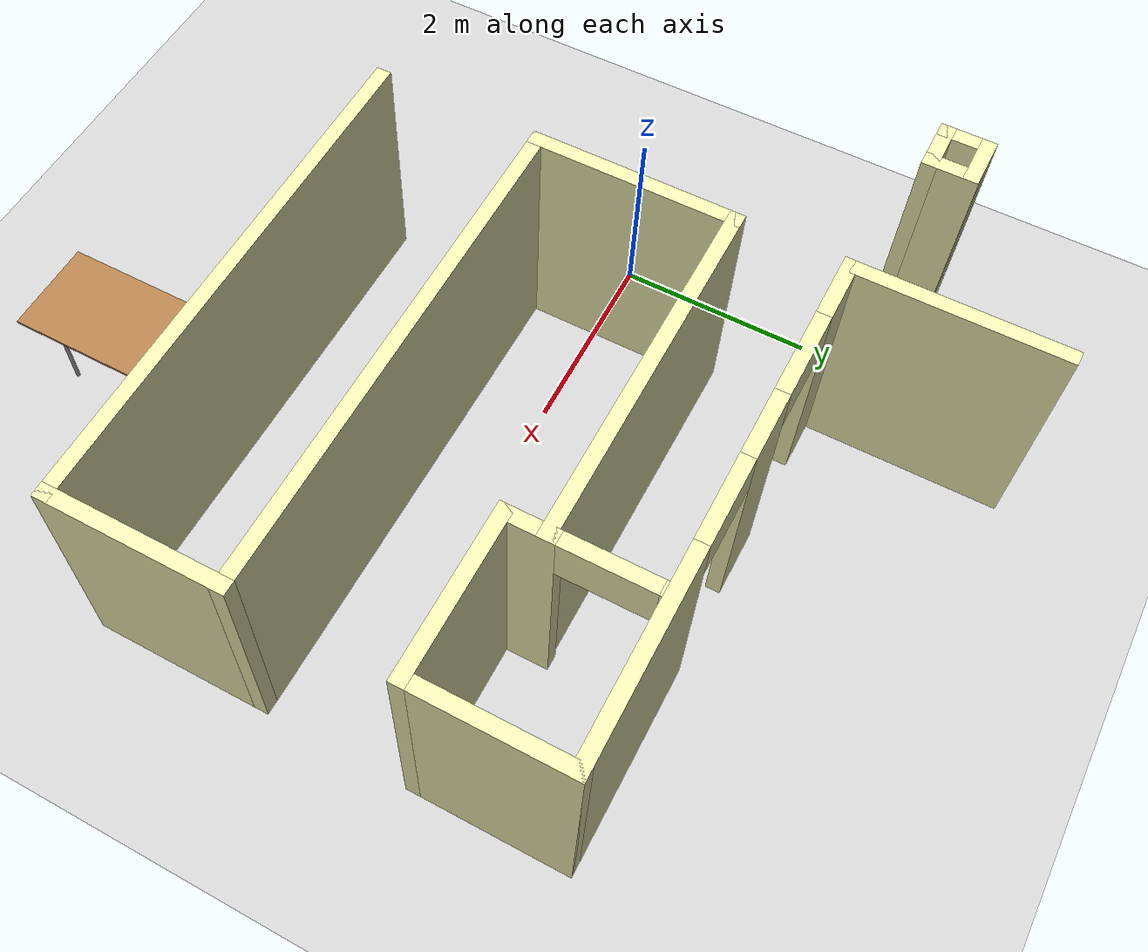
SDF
<sdf version="1.6">
 <world name="default">
  <model name="ground_plane">
   <static>1</static>
   <link name="link">
    <collision name="collision">
     <geometry><plane><normal>0 0 1</normal><size>100 100</size></plane></geometry>
     <surface><friction><ode><mu>100</mu><mu2>50</mu2></ode></friction></surface>
    </collision>
    <visual name="visual">
     <cast_shadows>0</cast_shadows>
     <geometry><plane><normal>0 0 1</normal><size>100 100</size></plane></geometry>
     <material>
      <script><uri>file://media/materials/scripts/gazebo.material</uri><name>Gazebo/Grey</name></script>
     </material>
    </visual>
   </link>
  </model>
  <model name="Building">
   <link name="Wall_113">
    <collision name="Wall_113_Collision">
     <geometry><box><size>1.75 0.15 2.5</size></box></geometry>
     <pose>0 0 1.25 0 -0 0</pose>
    </collision>
    <visual name="Wall_113_Visual">
     <pose>0 0 1.25 0 -0 0</pose>
     <geometry><box><size>1.75 0.15 2.5</size></box></geometry>
     <material>
      <script><uri>file://media/materials/scripts/gazebo.material</uri><name>Gazebo/Grey</name></script>
      <ambient>0.92 0.92 0.68 1</ambient>
     </material>
     <meta><layer>0</layer></meta>
    </visual>
    <pose>5.2 0.836388 0 0 -0 3.14159</pose>
   </link>
   <link name="Wall_115">
    <pose>4.4 1.51139 0 0 -0 1.5708</pose>
    <visual name="Wall_115_Visual_0">
     <pose>-0.461821 0 1.25 0 -0 0</pose>
     <geometry><box><size>0.576358 0.15 2.5</size></box></geometry>
     <material>
      <script><uri>file://media/materials/scripts/gazebo.material</uri><name>Gazebo/Grey</name></script>
      <ambient>0.92 0.92 0.68 1</ambient>
     </material>
     <meta><layer>0</layer></meta>
    </visual>
    <collision name="Wall_115_Collision_0">
     <geometry><box><size>0.576358 0.15 2.5</size></box></geometry>
     <pose>-0.461821 0 1.25 0 -0 0</pose>
    </collision>
    <visual name="Wall_115_Visual_1">
     <pose>0.738179 0 1.25 0 -0 0</pose>
     <geometry><box><size>0.023642 0.15 2.5</size></box></geometry>
     <material>
      <script><uri>file://media/materials/scripts/gazebo.material</uri><name>Gazebo/Grey</name></script>
      <ambient>0.92 0.92 0.68 1</ambient>
     </material>
     <meta><layer>0</layer></meta>
    </visual>
    <collision name="Wall_115_Collision_1">
     <geometry><box><size>0.023642 0.15 2.5</size></box></geometry>
     <pose>0.738179 0 1.25 0 -0 0</pose>
    </collision>
    <visual name="Wall_115_Visual_2">
     <pose>0.276358 0 2.25 0 -0 0</pose>
     <geometry><box><size>0.9 0.15 0.5</size></box></geometry>
     <material>
      <script><uri>file://media/materials/scripts/gazebo.material</uri><name>Gazebo/Grey</name></script>
      <ambient>0.92 0.92 0.68 1</ambient>
     </material>
     <meta><layer>0</layer></meta>
    </visual>
    <collision name="Wall_115_Collision_2">
     <geometry><box><size>0.9 0.15 0.5</size></box></geometry>
     <pose>0.276358 0 2.25 0 -0 0</pose>
    </collision>
   </link>
   <link name="Wall_117">
    <collision name="Wall_117_Collision">
     <geometry><box><size>3.75 0.15 2.5</size></box></geometry>
     <pose>0 0 1.25 0 -0 0</pose>
    </collision>
    <visual name="Wall_117_Visual">
     <pose>0 0 1.25 0 -0 0</pose>
     <geometry><box><size>3.75 0.15 2.5</size></box></geometry>
     <material>
      <script><uri>file://media/materials/scripts/gazebo.material</uri><name>Gazebo/Grey</name></script>
      <ambient>0.92 0.92 0.68 1</ambient>
     </material>
     <meta><layer>0</layer></meta>
    </visual>
    <pose>2.6 1.23639 0 0 -0 0</pose>
   </link>
   <link name="Wall_14">
    <collision name="Wall_14_Collision">
     <geometry><box><size>1.85 0.15 2.5</size></box></geometry>
     <pose>0 0 1.25 0 -0 0</pose>
    </collision>
    <visual name="Wall_14_Visual">
     <pose>0 0 1.25 0 -0 0</pose>
     <geometry><box><size>1.85 0.15 2.5</size></box></geometry>
     <material>
      <script><uri>file://media/materials/scripts/gazebo.material</uri><name>Gazebo/Grey</name></script>
      <ambient>0.92 0.92 0.68 1</ambient>
     </material>
     <meta><layer>0</layer></meta>
    </visual>
    <pose>6 -1.61361 0 0 -0 1.5708</pose>
   </link>
   <link name="Wall_16">
    <collision name="Wall_16_Collision">
     <geometry><box><size>5.35 0.15 2.5</size></box></geometry>
     <pose>0 0 1.25 0 -0 0</pose>
    </collision>
    <visual name="Wall_16_Visual">
     <pose>0 0 1.25 0 -0 0</pose>
     <geometry><box><size>5.35 0.15 2.5</size></box></geometry>
     <material>
      <script><uri>file://media/materials/scripts/gazebo.material</uri><name>Gazebo/Grey</name></script>
      <ambient>0.92 0.92 0.68 1</ambient>
     </material>
     <meta><layer>0</layer></meta>
    </visual>
    <pose>3.4 -0.763612 0 0 -0 3.14159</pose>
   </link>
   <link name="Wall_18">
    <collision name="Wall_18_Collision">
     <geometry><box><size>2.15 0.15 2.5</size></box></geometry>
     <pose>0 0 1.25 0 -0 0</pose>
    </collision>
    <visual name="Wall_18_Visual">
     <pose>0 0 1.25 0 -0 0</pose>
     <geometry><box><size>2.15 0.15 2.5</size></box></geometry>
     <material>
      <script><uri>file://media/materials/scripts/gazebo.material</uri><name>Gazebo/Grey</name></script>
      <ambient>0.92 0.92 0.68 1</ambient>
     </material>
     <meta><layer>0</layer></meta>
    </visual>
    <pose>0.8 0.236388 0 0 -0 1.5708</pose>
   </link>
   <link name="Wall_22">
    <collision name="Wall_22_Collision">
     <geometry><box><size>2.15 0.15 2.5</size></box></geometry>
     <pose>0 0 1.25 0 -0 0</pose>
    </collision>
    <visual name="Wall_22_Visual">
     <pose>0 0 1.25 0 -0 0</pose>
     <geometry><box><size>2.15 0.15 2.5</size></box></geometry>
     <material>
      <script><uri>file://media/materials/scripts/gazebo.material</uri><name>Gazebo/Grey</name></script>
      <ambient>0.92 0.92 0.68 1</ambient>
     </material>
     <meta><layer>0</layer></meta>
    </visual>
    <pose>0.8 3.33639 0 0 0 -1.5708</pose>
   </link>
   <link name="Wall_24">
    <pose>3.4 2.33639 0 0 -0 0</pose>
    <visual name="Wall_24_Visual_0">
     <pose>-2.33821 0 1.25 0 -0 0</pose>
     <geometry><box><size>0.673574 0.15 2.5</size></box></geometry>
     <material>
      <script><uri>file://media/materials/scripts/gazebo.material</uri><name>Gazebo/Grey</name></script>
      <ambient>0.92 0.92 0.68 1</ambient>
     </material>
     <meta><layer>0</layer></meta>
    </visual>
    <collision name="Wall_24_Collision_0">
     <geometry><box><size>0.673574 0.15 2.5</size></box></geometry>
     <pose>-2.33821 0 1.25 0 -0 0</pose>
    </collision>
    <visual name="Wall_24_Visual_1">
     <pose>-0.749839 0 1.25 0 -0 0</pose>
     <geometry><box><size>0.703173 0.15 2.5</size></box></geometry>
     <material>
      <script><uri>file://media/materials/scripts/gazebo.material</uri><name>Gazebo/Grey</name></script>
      <ambient>0.92 0.92 0.68 1</ambient>
     </material>
     <meta><layer>0</layer></meta>
    </visual>
    <collision name="Wall_24_Collision_1">
     <geometry><box><size>0.703173 0.15 2.5</size></box></geometry>
     <pose>-0.749839 0 1.25 0 -0 0</pose>
    </collision>
    <visual name="Wall_24_Visual_2">
     <pose>1.58837 0 1.25 0 -0 0</pose>
     <geometry><box><size>2.17325 0.15 2.5</size></box></geometry>
     <material>
      <script><uri>file://media/materials/scripts/gazebo.material</uri><name>Gazebo/Grey</name></script>
      <ambient>0.92 0.92 0.68 1</ambient>
     </material>
     <meta><layer>0</layer></meta>
    </visual>
    <collision name="Wall_24_Collision_2">
     <geometry><box><size>2.17325 0.15 2.5</size></box></geometry>
     <pose>1.58837 0 1.25 0 -0 0</pose>
    </collision>
    <visual name="Wall_24_Visual_3">
     <pose>-1.55143 0 2.25 0 -0 0</pose>
     <geometry><box><size>0.9 0.15 0.5</size></box></geometry>
     <material>
      <script><uri>file://media/materials/scripts/gazebo.material</uri><name>Gazebo/Grey</name></script>
      <ambient>0.92 0.92 0.68 1</ambient>
     </material>
     <meta><layer>0</layer></meta>
    </visual>
    <collision name="Wall_24_Collision_3">
     <geometry><box><size>0.9 0.15 0.5</size></box></geometry>
     <pose>-1.55143 0 2.25 0 -0 0</pose>
    </collision>
    <visual name="Wall_24_Visual_4">
     <pose>0.051747 0 2.25 0 -0 0</pose>
     <geometry><box><size>0.9 0.15 0.5</size></box></geometry>
     <material>
      <script><uri>file://media/materials/scripts/gazebo.material</uri><name>Gazebo/Grey</name></script>
      <ambient>0.92 0.92 0.68 1</ambient>
     </material>
     <meta><layer>0</layer></meta>
    </visual>
    <collision name="Wall_24_Collision_4">
     <geometry><box><size>0.9 0.15 0.5</size></box></geometry>
     <pose>0.051747 0 2.25 0 -0 0</pose>
    </collision>
   </link>
   <link name="Wall_26">
    <collision name="Wall_26_Collision">
     <geometry><box><size>1.65 0.15 2.5</size></box></geometry>
     <pose>0 0 1.25 0 -0 0</pose>
    </collision>
    <visual name="Wall_26_Visual">
     <pose>0 0 1.25 0 -0 0</pose>
     <geometry><box><size>1.65 0.15 2.5</size></box></geometry>
     <material>
      <script><uri>file://media/materials/scripts/gazebo.material</uri><name>Gazebo/Grey</name></script>
      <ambient>0.92 0.92 0.68 1</ambient>
     </material>
     <meta><layer>0</layer></meta>
    </visual>
    <pose>6 1.58639 0 0 0 -1.5708</pose>
   </link>
   <link name="Wall_71">
    <collision name="Wall_71_Collision">
     <geometry><box><size>0.55 0.15 2.5</size></box></geometry>
     <pose>0 0 1.25 0 -0 0</pose>
    </collision>
    <visual name="Wall_71_Visual">
     <pose>0 0 1.25 0 -0 0</pose>
     <geometry><box><size>0.55 0.15 2.5</size></box></geometry>
     <material>
      <script><uri>file://media/materials/scripts/gazebo.material</uri><name>Gazebo/Grey</name></script>
      <ambient>0.92 0.92 0.68 1</ambient>
     </material>
     <meta><layer>0</layer></meta>
    </visual>
    <pose>-0.9 2.53639 0 0 -0 0</pose>
   </link>
   <link name="Wall_73">
    <collision name="Wall_73_Collision">
     <geometry><box><size>0.55 0.15 2.5</size></box></geometry>
     <pose>0 0 1.25 0 -0 0</pose>
    </collision>
    <visual name="Wall_73_Visual">
     <pose>0 0 1.25 0 -0 0</pose>
     <geometry><box><size>0.55 0.15 2.5</size></box></geometry>
     <material>
      <script><uri>file://media/materials/scripts/gazebo.material</uri><name>Gazebo/Grey</name></script>
      <ambient>0.92 0.92 0.68 1</ambient>
     </material>
     <meta><layer>0</layer></meta>
    </visual>
    <pose>-0.9 2.93639 0 0 -0 0</pose>
   </link>
   <link name="Wall_75">
    <collision name="Wall_75_Collision">
     <geometry><box><size>0.55 0.15 2.5</size></box></geometry>
     <pose>0 0 1.25 0 -0 0</pose>
    </collision>
    <visual name="Wall_75_Visual">
     <pose>0 0 1.25 0 -0 0</pose>
     <geometry><box><size>0.55 0.15 2.5</size></box></geometry>
     <material>
      <script><uri>file://media/materials/scripts/gazebo.material</uri><name>Gazebo/Grey</name></script>
      <ambient>0.92 0.92 0.68 1</ambient>
     </material>
     <meta><layer>0</layer></meta>
    </visual>
    <pose>-1.1 2.73639 0 0 0 -1.5708</pose>
   </link>
   <link name="Wall_78">
    <collision name="Wall_78_Collision">
     <geometry><box><size>0.55 0.15 2.5</size></box></geometry>
     <pose>0 0 1.25 0 -0 0</pose>
    </collision>
    <visual name="Wall_78_Visual">
     <pose>0 0 1.25 0 -0 0</pose>
     <geometry><box><size>0.55 0.15 2.5</size></box></geometry>
     <material>
      <script><uri>file://media/materials/scripts/gazebo.material</uri><name>Gazebo/Grey</name></script>
      <ambient>0.92 0.92 0.68 1</ambient>
     </material>
     <meta><layer>0</layer></meta>
    </visual>
    <pose>-0.7 2.73639 0 0 0 -1.5708</pose>
   </link>
   <link name="Wall_8">
    <collision name="Wall_8_Collision">
     <geometry><box><size>5.35 0.15 2.5</size></box></geometry>
     <pose>0 0 1.25 0 -0 0</pose>
    </collision>
    <visual name="Wall_8_Visual">
     <pose>0 0 1.25 0 -0 0</pose>
     <geometry><box><size>5.35 0.15 2.5</size></box></geometry>
     <material>
      <script><uri>file://media/materials/scripts/gazebo.material</uri><name>Gazebo/Grey</name></script>
      <ambient>0.92 0.92 0.68 1</ambient>
     </material>
     <meta><layer>0</layer></meta>
    </visual>
    <pose>3.4 -2.46361 0 0 -0 0</pose>
   </link>
   <static>1</static>
  </model>
  <model name="tablealt_big_clone_0">
   <link name="link">
    <inertial>
     <mass>1</mass>
     <inertia><ixx>1</ixx><ixy>0</ixy><ixz>0</ixz><iyy>1</iyy><iyz>0</iyz><izz>1</izz></inertia>
    </inertial>
    <visual name="back_right_leg">
     <pose>-0.68 -0.38 0.4 0 -0 0</pose>
     <geometry><cylinder><radius>0.02</radius><length>0.8</length></cylinder></geometry>
     <material>
      <script><uri>file://media/materials/scripts/gazebo.material</uri><name>Gazebo/Grey</name></script>
      <shader type="pixel"><normal_map>__default__</normal_map></shader>
      <ambient>0.3 0.3 0.3 1</ambient>
      <diffuse>0.7 0.7 0.7 1</diffuse>
      <specular>0.01 0.01 0.01 1</specular>
      <emissive>0 0 0 1</emissive>
     </material>
    </visual>
    <visual name="back_left_leg">
     <pose>-0.68 0.38 0.4 0 -0 0</pose>
     <geometry><cylinder><radius>0.02</radius><length>0.8</length></cylinder></geometry>
     <material>
      <script><uri>file://media/materials/scripts/gazebo.material</uri><name>Gazebo/Grey</name></script>
      <shader type="pixel"><normal_map>__default__</normal_map></shader>
      <ambient>0.3 0.3 0.3 1</ambient>
      <diffuse>0.7 0.7 0.7 1</diffuse>
      <specular>0.01 0.01 0.01 1</specular>
      <emissive>0 0 0 1</emissive>
     </material>
    </visual>
    <visual name="visual1">
     <pose>0 0 0.8 0 -0 0</pose>
     <geometry><box><size>2.2 1 0.03</size></box></geometry>
     <material>
      <script><uri>file://media/materials/scripts/gazebo.material</uri><name>Gazebo/Wood</name></script>
      <shader type="pixel"><normal_map>__default__</normal_map></shader>
      <ambient>0.92 0.92 0.68 1</ambient>
      <diffuse>1 1 1 1</diffuse>
      <specular>0.2 0.2 0.2 1</specular>
      <emissive>0 0 0 1</emissive>
     </material>
    </visual>
    <visual name="front_left_leg">
     <pose>0.68 0.38 0.4 0 -0 0</pose>
     <geometry><cylinder><radius>0.02</radius><length>0.8</length></cylinder></geometry>
     <material>
      <script><uri>file://media/materials/scripts/gazebo.material</uri><name>Gazebo/Grey</name></script>
      <shader type="pixel"><normal_map>__default__</normal_map></shader>
      <ambient>0.3 0.3 0.3 1</ambient>
      <diffuse>0.7 0.7 0.7 1</diffuse>
      <specular>0.01 0.01 0.01 1</specular>
      <emissive>0 0 0 1</emissive>
     </material>
    </visual>
    <visual name="front_right_leg">
     <pose>0.68 -0.38 0.4 0 -0 0</pose>
     <geometry><cylinder><radius>0.02</radius><length>0.8</length></cylinder></geometry>
     <material>
      <script><uri>file://media/materials/scripts/gazebo.material</uri><name>Gazebo/Grey</name></script>
      <shader type="pixel"><normal_map>__default__</normal_map></shader>
      <ambient>0.3 0.3 0.3 1</ambient>
      <diffuse>0.7 0.7 0.7 1</diffuse>
      <specular>0.01 0.01 0.01 1</specular>
      <emissive>0 0 0 1</emissive>
     </material>
    </visual>
    <collision name="front_right_leg">
     <pose>0.68 -0.38 0.4 0 -0 0</pose>
     <geometry><cylinder><radius>0.02</radius><length>0.8</length></cylinder></geometry>
     <surface>
      <friction>
       <ode><mu>1</mu><mu2>1</mu2><fdir1>0 0 0</fdir1><slip1>0</slip1><slip2>0</slip2></ode>
       <torsional>
        <coefficient>1</coefficient>
        <patch_radius>0</patch_radius>
        <surface_radius>0</surface_radius>
        <use_patch_radius>1</use_patch_radius>
        <ode><slip>0</slip></ode>
       </torsional>
      </friction>
      <bounce><restitution_coefficient>0</restitution_coefficient><threshold>1e+06</threshold></bounce>
      <contact>
       <collide_without_contact>0</collide_without_contact>
       <collide_without_contact_bitmask>1</collide_without_contact_bitmask>
       <collide_bitmask>1</collide_bitmask>
       <ode>
        <soft_cfm>0</soft_cfm>
        <soft_erp>0.2</soft_erp>
        <kp>1e+13</kp>
        <kd>1</kd>
        <max_vel>0.01</max_vel>
        <min_depth>0</min_depth>
       </ode>
       <bullet>
        <split_impulse>1</split_impulse>
        <split_impulse_penetration_threshold>-0.01</split_impulse_penetration_threshold>
        <soft_cfm>0</soft_cfm>
        <soft_erp>0.2</soft_erp>
        <kp>1e+13</kp>
        <kd>1</kd>
       </bullet>
      </contact>
     </surface>
    </collision>
    <collision name="surface">
     <pose>0 0 0.8 0 -0 0</pose>
     <geometry><box><size>2.2 1 0.03</size></box></geometry>
     <surface>
      <friction>
       <ode><mu>0.6</mu><mu2>0.6</mu2><fdir1>0 0 0</fdir1><slip1>0</slip1><slip2>0</slip2></ode>
       <torsional>
        <coefficient>1</coefficient>
        <patch_radius>0</patch_radius>
        <surface_radius>0</surface_radius>
        <use_patch_radius>1</use_patch_radius>
        <ode><slip>0</slip></ode>
       </torsional>
      </friction>
      <bounce><restitution_coefficient>0</restitution_coefficient><threshold>1e+06</threshold></bounce>
      <contact>
       <collide_without_contact>0</collide_without_contact>
       <collide_without_contact_bitmask>1</collide_without_contact_bitmask>
       <collide_bitmask>1</collide_bitmask>
       <ode>
        <soft_cfm>0</soft_cfm>
        <soft_erp>0.2</soft_erp>
        <kp>1e+13</kp>
        <kd>1</kd>
        <max_vel>0.01</max_vel>
        <min_depth>0</min_depth>
       </ode>
       <bullet>
        <split_impulse>1</split_impulse>
        <split_impulse_penetration_threshold>-0.01</split_impulse_penetration_threshold>
        <soft_cfm>0</soft_cfm>
        <soft_erp>0.2</soft_erp>
        <kp>1e+13</kp>
        <kd>1</kd>
       </bullet>
      </contact>
     </surface>
    </collision>
    <collision name="front_left_leg">
     <pose>0.68 0.38 0.4 0 -0 0</pose>
     <geometry><cylinder><radius>0.02</radius><length>0.8</length></cylinder></geometry>
     <surface>
      <friction>
       <ode><mu>1</mu><mu2>1</mu2><fdir1>0 0 0</fdir1><slip1>0</slip1><slip2>0</slip2></ode>
       <torsional>
        <coefficient>1</coefficient>
        <patch_radius>0</patch_radius>
        <surface_radius>0</surface_radius>
        <use_patch_radius>1</use_patch_radius>
        <ode><slip>0</slip></ode>
       </torsional>
      </friction>
      <bounce><restitution_coefficient>0</restitution_coefficient><threshold>1e+06</threshold></bounce>
      <contact>
       <collide_without_contact>0</collide_without_contact>
       <collide_without_contact_bitmask>1</collide_without_contact_bitmask>
       <collide_bitmask>1</collide_bitmask>
       <ode>
        <soft_cfm>0</soft_cfm>
        <soft_erp>0.2</soft_erp>
        <kp>1e+13</kp>
        <kd>1</kd>
        <max_vel>0.01</max_vel>
        <min_depth>0</min_depth>
       </ode>
       <bullet>
        <split_impulse>1</split_impulse>
        <split_impulse_penetration_threshold>-0.01</split_impulse_penetration_threshold>
        <soft_cfm>0</soft_cfm>
        <soft_erp>0.2</soft_erp>
        <kp>1e+13</kp>
        <kd>1</kd>
       </bullet>
      </contact>
     </surface>
    </collision>
    <collision name="back_left_leg">
     <pose>-0.68 0.38 0.4 0 -0 0</pose>
     <geometry><cylinder><radius>0.02</radius><length>0.8</length></cylinder></geometry>
     <surface>
      <friction>
       <ode><mu>1</mu><mu2>1</mu2><fdir1>0 0 0</fdir1><slip1>0</slip1><slip2>0</slip2></ode>
       <torsional>
        <coefficient>1</coefficient>
        <patch_radius>0</patch_radius>
        <surface_radius>0</surface_radius>
        <use_patch_radius>1</use_patch_radius>
        <ode><slip>0</slip></ode>
       </torsional>
      </friction>
      <bounce><restitution_coefficient>0</restitution_coefficient><threshold>1e+06</threshold></bounce>
      <contact>
       <collide_without_contact>0</collide_without_contact>
       <collide_without_contact_bitmask>1</collide_without_contact_bitmask>
       <collide_bitmask>1</collide_bitmask>
       <ode>
        <soft_cfm>0</soft_cfm>
        <soft_erp>0.2</soft_erp>
        <kp>1e+13</kp>
        <kd>1</kd>
        <max_vel>0.01</max_vel>
        <min_depth>0</min_depth>
       </ode>
       <bullet>
        <split_impulse>1</split_impulse>
        <split_impulse_penetration_threshold>-0.01</split_impulse_penetration_threshold>
        <soft_cfm>0</soft_cfm>
        <soft_erp>0.2</soft_erp>
        <kp>1e+13</kp>
        <kd>1</kd>
       </bullet>
      </contact>
     </surface>
    </collision>
    <collision name="back_right_leg">
     <pose>-0.68 -0.38 0.4 0 -0 0</pose>
     <geometry><cylinder><radius>0.02</radius><length>0.8</length></cylinder></geometry>
     <surface>
      <friction>
       <ode><mu>1</mu><mu2>1</mu2><fdir1>0 0 0</fdir1><slip1>0</slip1><slip2>0</slip2></ode>
       <torsional>
        <coefficient>1</coefficient>
        <patch_radius>0</patch_radius>
        <surface_radius>0</surface_radius>
        <use_patch_radius>1</use_patch_radius>
        <ode><slip>0</slip></ode>
       </torsional>
      </friction>
      <bounce><restitution_coefficient>0</restitution_coefficient><threshold>1e+06</threshold></bounce>
      <contact>
       <collide_without_contact>0</collide_without_contact>
       <collide_without_contact_bitmask>1</collide_without_contact_bitmask>
       <collide_bitmask>1</collide_bitmask>
       <ode>
        <soft_cfm>0</soft_cfm>
        <soft_erp>0.2</soft_erp>
        <kp>1e+13</kp>
        <kd>1</kd>
        <max_vel>0.01</max_vel>
        <min_depth>0</min_depth>
       </ode>
       <bullet>
        <split_impulse>1</split_impulse>
        <split_impulse_penetration_threshold>-0.01</split_impulse_penetration_threshold>
        <soft_cfm>0</soft_cfm>
        <soft_erp>0.2</soft_erp>
        <kp>1e+13</kp>
        <kd>1</kd>
       </bullet>
      </contact>
     </surface>
    </collision>
   </link>
   <static>1</static>
   <pose>3.51816 -3.78375 0 0 -0 1.5707</pose>
  </model>
  <model name="my_ball">
   <link name="link_0">
    <inertial>
     <mass>1</mass>
     <inertia><ixx>0.1</ixx><ixy>0</ixy><ixz>0</ixz><iyy>0.1</iyy><iyz>0</iyz><izz>0.1</izz></inertia>
    </inertial>
    <visual name="visual">
     <geometry><sphere><radius>0.1</radius></sphere></geometry>
     <material>
      <lighting>1</lighting>
      <script><uri>file://media/materials/scripts/gazebo.material</uri><name>Gazebo/Grey</name></script>
      <shader type="vertex"><normal_map>__default__</normal_map></shader>
      <ambient>1 1 1 1</ambient>
      <diffuse>1 1 1 1</diffuse>
      <specular>1 1 1 1</specular>
      <emissive>1 1 1 1</emissive>
     </material>
    </visual>
    <collision name="collision">
     <geometry><sphere><radius>0.1</radius></sphere></geometry>
     <surface>
      <friction>
       <ode><mu>1</mu><mu2>1</mu2><fdir1>0 0 0</fdir1><slip1>0</slip1><slip2>0</slip2></ode>
       <torsional>
        <coefficient>1</coefficient>
        <patch_radius>0</patch_radius>
        <surface_radius>0</surface_radius>
        <use_patch_radius>1</use_patch_radius>
        <ode><slip>0</slip></ode>
       </torsional>
      </friction>
      <bounce><restitution_coefficient>0</restitution_coefficient><threshold>1e+06</threshold></bounce>
      <contact>
       <collide_without_contact>0</collide_without_contact>
       <collide_without_contact_bitmask>1</collide_without_contact_bitmask>
       <collide_bitmask>1</collide_bitmask>
       <ode>
        <soft_cfm>0</soft_cfm>
        <soft_erp>0.2</soft_erp>
        <kp>1e+13</kp>
        <kd>1</kd>
        <max_vel>0.01</max_vel>
        <min_depth>0</min_depth>
       </ode>
       <bullet>
        <split_impulse>1</split_impulse>
        <split_impulse_penetration_threshold>-0.01</split_impulse_penetration_threshold>
        <soft_cfm>0</soft_cfm>
        <soft_erp>0.2</soft_erp>
        <kp>1e+13</kp>
        <kd>1</kd>
       </bullet>
      </contact>
     </surface>
    </collision>
   </link>
   <static>0</static>
   <pose>3.30427 0.451705 0.1 0 -0 0</pose>
  </model>
 </world>
</sdf>
